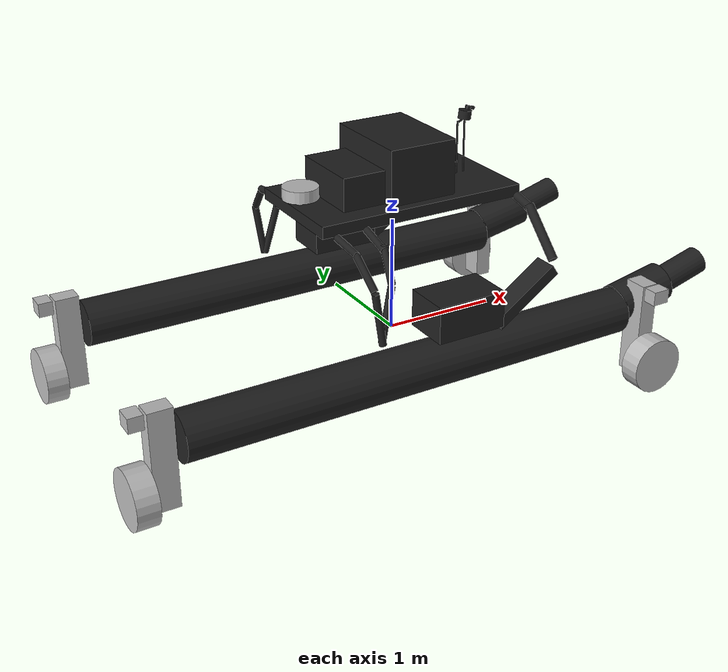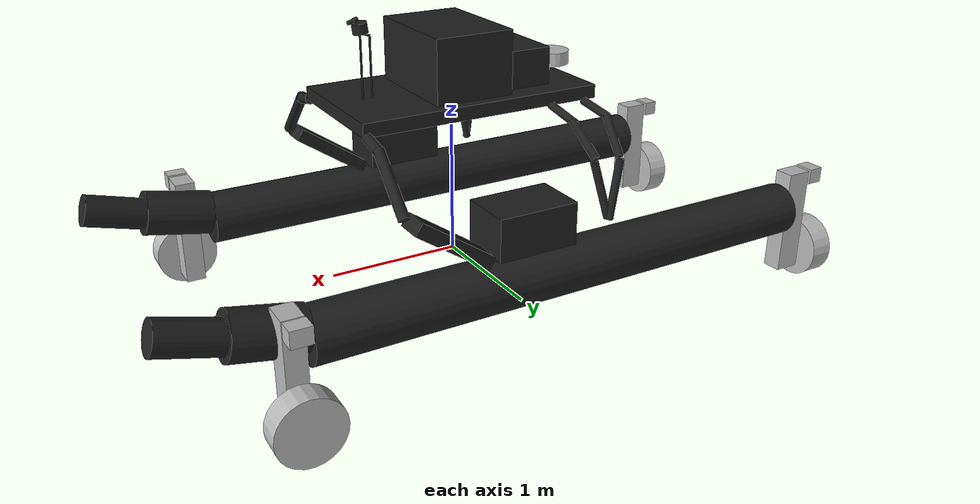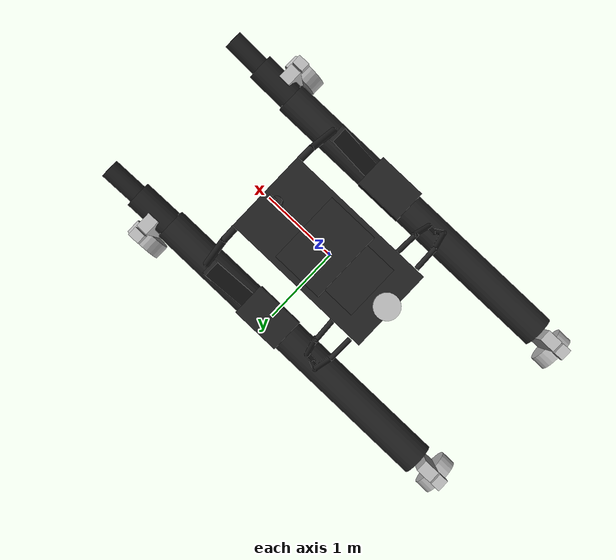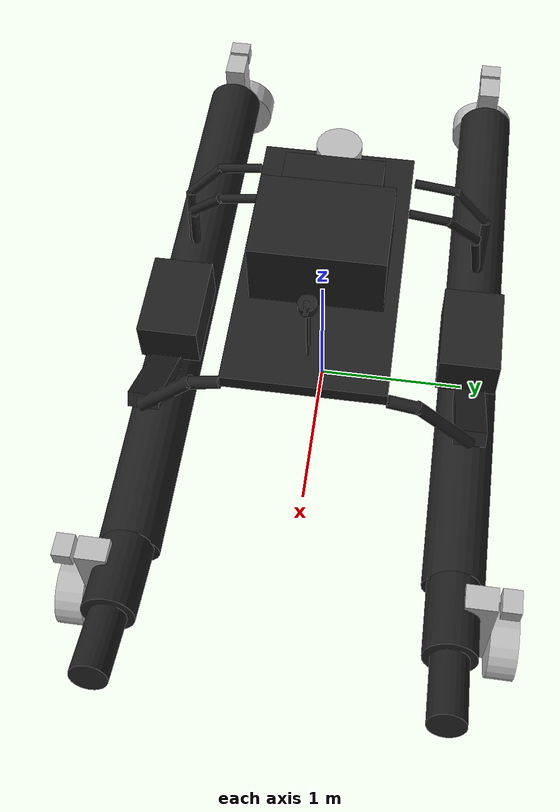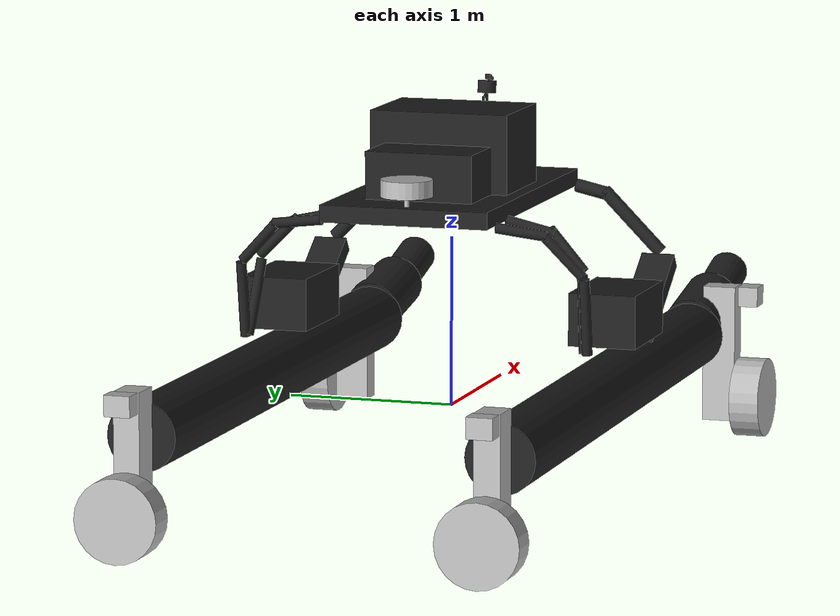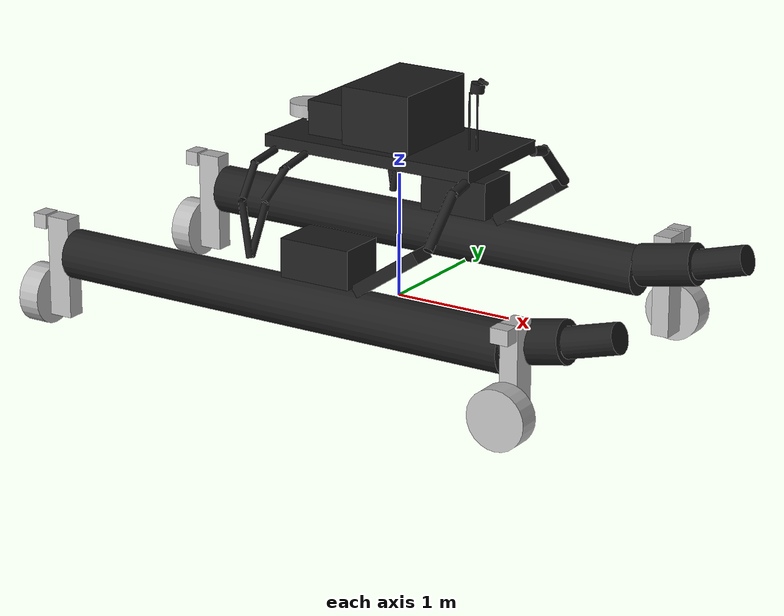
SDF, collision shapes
<sdf version='1.7'>
  <model name='WAM-V'>
    <link name='wamv/base_link'>
      <inertial>
        <pose>-0.005402 -0 0.252116 0 -0 0</pose>
        <mass>249.382</mass>
        <inertia>
          <ixx>224.43</ixx>
          <ixy>1.91919e-17</ixy>
          <ixz>1.41652</ixz>
          <iyy>453.226</iyy>
          <iyz>-8.95695e-16</iyz>
          <izz>499.347</izz>
        </inertia>
      </inertial>
      <collision name='wamv/base_link_fixed_joint_lump__front_camera_post_collision_collision'>
        <pose>0.7 0 1.55975 0 -0 0</pose>
        <geometry>
          <cylinder>
            <length>0.5265</length>
            <radius>0.0076</radius>
          </cylinder>
        </geometry>
      </collision>
      <collision name='wamv/base_link_fixed_joint_lump__front_camera_post_arm_collision_collision_1'>
        <pose>0.73 0 1.823 -1.20428 0 -1.5708</pose>
        <geometry>
          <cylinder>
            <length>0.065</length>
            <radius>0.008</radius>
          </cylinder>
        </geometry>
      </collision>
      <collision name='wamv/base_link_fixed_joint_lump__front_camera_lens_collision_collision_2'>
        <pose>0.767387 0 1.84534 3.14159 1.309 3.14159</pose>
        <geometry>
          <cylinder>
            <length>0.042</length>
            <radius>0.015</radius>
          </cylinder>
        </geometry>
      </collision>
      <collision name='wamv/base_link_fixed_joint_lump__front_camera_box_collision_collision_3'>
        <pose>0.730199 0 1.85531 0 0.261799 0</pose>
        <geometry>
          <box>
            <size>0.036 0.03 0.03</size>
          </box>
        </geometry>
      </collision>
      <collision name='wamv/base_link_fixed_joint_lump__lidar_wamv_post_collision_collision_4'>
        <pose>0.63 0 1.52325 0 -0 0</pose>
        <geometry>
          <cylinder>
            <length>0.4535</length>
            <radius>0.0076</radius>
          </cylinder>
        </geometry>
      </collision>
      <collision name='wamv/base_link_fixed_joint_lump__lidar_wamv_post_arm_collision_collision_5'>
        <pose>0.66 0 1.75 -1.20428 0 -1.5708</pose>
        <geometry>
          <cylinder>
            <length>0.065</length>
            <radius>0.008</radius>
          </cylinder>
        </geometry>
      </collision>
      <collision name='wamv/base_link_fixed_joint_lump__lidar_wamv_collision_collision_6'>
        <pose>0.7 0 1.8 0 0.139626 0</pose>
        <geometry>
          <cylinder>
            <length>0.075</length>
            <radius>0.055</radius>
          </cylinder>
        </geometry>
      </collision>
      <collision name='wamv/base_link_fixed_joint_lump__cpu_case_1_collision_collision_7'>
        <pose>0.035 0 1.53 0 -0 0</pose>
        <geometry>
          <box>
            <size>0.595 0.83 0.47</size>
          </box>
        </geometry>
      </collision>
      <collision name='wamv/base_link_fixed_joint_lump__cpu_case_2_collision_collision_8'>
        <pose>-0.45 0 1.438 0 -0 0</pose>
        <geometry>
          <box>
            <size>0.375 0.64 0.28</size>
          </box>
        </geometry>
      </collision>
      <collision name='wamv/base_link_fixed_joint_lump__left_float_collision_9'>
        <pose>-0.4 1.03 0.2 0 1.5708 0</pose>
        <geometry>
          <cylinder>
            <length>4</length>
            <radius>0.2</radius>
          </cylinder>
        </geometry>
      </collision>
      <collision name='wamv/base_link_fixed_joint_lump__left_mid_float_collision_10'>
        <pose>1.85 1.03 0.3 0 1.38 0</pose>
        <geometry>
          <cylinder>
            <length>0.5</length>
            <radius>0.17</radius>
          </cylinder>
        </geometry>
      </collision>
      <collision name='wamv/base_link_fixed_joint_lump__left_front_float_collision_11'>
        <pose>2.3 1.03 0.4 0 1.3 0</pose>
        <geometry>
          <cylinder>
            <length>0.45</length>
            <radius>0.12</radius>
          </cylinder>
        </geometry>
      </collision>
      <collision name='wamv/base_link_fixed_joint_lump__front_left_beam_lower_collision_12'>
        <pose>0.9 0.85 1 0.78 -0 0</pose>
        <geometry>
          <cylinder>
            <length>0.5</length>
            <radius>0.04</radius>
          </cylinder>
        </geometry>
      </collision>
      <collision name='wamv/base_link_fixed_joint_lump__front_left_beam_upper_collision_13'>
        <pose>0.9 0.6 1.18 1.35 -0 0</pose>
        <geometry>
          <cylinder>
            <length>0.2</length>
            <radius>0.04</radius>
          </cylinder>
        </geometry>
      </collision>
      <collision name='wamv/base_link_fixed_joint_lump__mid_left_beam_lower_collision_14'>
        <pose>-0.65 0.99 0.7 0.1 0.25 0</pose>
        <geometry>
          <cylinder>
            <length>0.45</length>
            <radius>0.03</radius>
          </cylinder>
        </geometry>
      </collision>
      <collision name='wamv/base_link_fixed_joint_lump__mid_left_beam_medium_collision_15'>
        <pose>-0.57 0.87 1.05 0.75 0.25 0</pose>
        <geometry>
          <cylinder>
            <length>0.32</length>
            <radius>0.03</radius>
          </cylinder>
        </geometry>
      </collision>
      <collision name='wamv/base_link_fixed_joint_lump__mid_left_beam_upper_collision_16'>
        <pose>-0.55 0.65 1.17 1.35 0.25 0</pose>
        <geometry>
          <cylinder>
            <length>0.3</length>
            <radius>0.03</radius>
          </cylinder>
        </geometry>
      </collision>
      <collision name='wamv/base_link_fixed_joint_lump__rear_left_beam_lower_collision_17'>
        <pose>-0.74 1.03 0.7 0 -0.15 0</pose>
        <geometry>
          <cylinder>
            <length>0.45</length>
            <radius>0.03</radius>
          </cylinder>
        </geometry>
      </collision>
      <collision name='wamv/base_link_fixed_joint_lump__rear_left_beam_medium_collision_18'>
        <pose>-0.79 0.91 1.05 0.75 -0.15 -0</pose>
        <geometry>
          <cylinder>
            <length>0.32</length>
            <radius>0.03</radius>
          </cylinder>
        </geometry>
      </collision>
      <collision name='wamv/base_link_fixed_joint_lump__rear_left_beam_upper_collision_19'>
        <pose>-0.81 0.67 1.18 1.45 -0.15 0</pose>
        <geometry>
          <cylinder>
            <length>0.3</length>
            <radius>0.03</radius>
          </cylinder>
        </geometry>
      </collision>
      <collision name='wamv/base_link_fixed_joint_lump__left_joint_collision_20'>
        <pose>0.58 1.03 0.6 0 -0.6 0</pose>
        <geometry>
          <box>
            <size>0.65 0.2 0.1</size>
          </box>
        </geometry>
      </collision>
      <collision name='wamv/base_link_fixed_joint_lump__right_float_collision_21'>
        <pose>-0.4 -1.03 0.2 0 1.5708 0</pose>
        <geometry>
          <cylinder>
            <length>4</length>
            <radius>0.2</radius>
          </cylinder>
        </geometry>
      </collision>
      <collision name='wamv/base_link_fixed_joint_lump__right_mid_float_collision_22'>
        <pose>1.85 -1.03 0.3 0 1.38 0</pose>
        <geometry>
          <cylinder>
            <length>0.5</length>
            <radius>0.17</radius>
          </cylinder>
        </geometry>
      </collision>
      <collision name='wamv/base_link_fixed_joint_lump__right_front_float_collision_23'>
        <pose>2.3 -1.03 0.4 0 1.3 0</pose>
        <geometry>
          <cylinder>
            <length>0.45</length>
            <radius>0.12</radius>
          </cylinder>
        </geometry>
      </collision>
      <collision name='wamv/base_link_fixed_joint_lump__front_right_beam_lower_collision_24'>
        <pose>0.9 -0.85 1 -0.78 0 0</pose>
        <geometry>
          <cylinder>
            <length>0.5</length>
            <radius>0.04</radius>
          </cylinder>
        </geometry>
      </collision>
      <collision name='wamv/base_link_fixed_joint_lump__front_right_beam_upper_collision_25'>
        <pose>0.9 -0.6 1.18 -1.35 0 0</pose>
        <geometry>
          <cylinder>
            <length>0.2</length>
            <radius>0.04</radius>
          </cylinder>
        </geometry>
      </collision>
      <collision name='wamv/base_link_fixed_joint_lump__mid_right_beam_lower_collision_26'>
        <pose>-0.65 -0.99 0.7 -0.1 0.25 0</pose>
        <geometry>
          <cylinder>
            <length>0.45</length>
            <radius>0.03</radius>
          </cylinder>
        </geometry>
      </collision>
      <collision name='wamv/base_link_fixed_joint_lump__mid_right_beam_medium_collision_27'>
        <pose>-0.57 -0.87 1.05 -0.75 0.25 0</pose>
        <geometry>
          <cylinder>
            <length>0.32</length>
            <radius>0.03</radius>
          </cylinder>
        </geometry>
      </collision>
      <collision name='wamv/base_link_fixed_joint_lump__mid_right_beam_upper_collision_28'>
        <pose>-0.55 -0.65 1.17 -1.35 0.25 0</pose>
        <geometry>
          <cylinder>
            <length>0.3</length>
            <radius>0.03</radius>
          </cylinder>
        </geometry>
      </collision>
      <collision name='wamv/base_link_fixed_joint_lump__rear_right_beam_lower_collision_29'>
        <pose>-0.74 -1.03 0.7 0 -0.15 0</pose>
        <geometry>
          <cylinder>
            <length>0.45</length>
            <radius>0.03</radius>
          </cylinder>
        </geometry>
      </collision>
      <collision name='wamv/base_link_fixed_joint_lump__rear_right_beam_medium_collision_30'>
        <pose>-0.79 -0.91 1.05 -0.75 -0.15 0</pose>
        <geometry>
          <cylinder>
            <length>0.32</length>
            <radius>0.03</radius>
          </cylinder>
        </geometry>
      </collision>
      <collision name='wamv/base_link_fixed_joint_lump__rear_right_beam_upper_collision_31'>
        <pose>-0.81 -0.67 1.18 -1.45 -0.15 0</pose>
        <geometry>
          <cylinder>
            <length>0.3</length>
            <radius>0.03</radius>
          </cylinder>
        </geometry>
      </collision>
      <collision name='wamv/base_link_fixed_joint_lump__right_joint_collision_32'>
        <pose>0.58 -1.03 0.6 0 -0.6 0</pose>
        <geometry>
          <box>
            <size>0.65 0.2 0.1</size>
          </box>
        </geometry>
      </collision>
      <collision name='wamv/base_link_fixed_joint_lump__top_base_collision_33'>
        <pose>0 0 1.25 0 -0 0</pose>
        <geometry>
          <box>
            <size>1.85 1 0.1</size>
          </box>
        </geometry>
      </collision>
      <collision name='wamv/base_link_fixed_joint_lump__left_battery_collision_collision_34'>
        <pose>0 1 0.6 0 -0 0</pose>
        <geometry>
          <box>
            <size>0.6 0.4 0.31</size>
          </box>
        </geometry>
      </collision>
      <collision name='wamv/base_link_fixed_joint_lump__right_battery_collision_collision_35'>
        <pose>0 -1 0.6 0 -0 0</pose>
        <geometry>
          <box>
            <size>0.6 0.4 0.31</size>
          </box>
        </geometry>
      </collision>
      <visual name='wamv/base_link_fixed_joint_lump__wamv/front_camera_post_link_visual'>
        <pose>0.7 0 1.55975 0 -0 0</pose>
        <geometry>
          <cylinder>
            <length>0.5265</length>
            <radius>0.0076</radius>
          </cylinder>
        </geometry>
        <material>
          <script>
            <name>Gazebo/Black</name>
            <uri>file://media/materials/scripts/gazebo.material</uri>
          </script>
        </material>
      </visual>
      <visual name='wamv/base_link_fixed_joint_lump__front_camera_post_arm_visual_visual_1'>
        <pose>0.692 0 1.82 -1.0472 0 -1.5708</pose>
        <geometry>
          <mesh>
            <scale>1 1 1</scale>
            <uri>model://vrx_gazebo/models/sensor_post/mesh/sensor_post_arm.dae</uri>
          </mesh>
        </geometry>
      </visual>
      <visual name='wamv/base_link_fixed_joint_lump__front_camera_visual_visual_2'>
        <pose>0.718124 0 1.85854 0.261799 0 1.5708</pose>
        <geometry>
          <mesh>
            <scale>1 1 1</scale>
            <uri>model://vrx_gazebo/models/mono_camera/mesh/mono_camera.dae</uri>
          </mesh>
        </geometry>
      </visual>
      <visual name='wamv/base_link_fixed_joint_lump__wamv/lidar_wamv_post_link_visual_3'>
        <pose>0.63 0 1.52325 0 -0 0</pose>
        <geometry>
          <cylinder>
            <length>0.4535</length>
            <radius>0.0076</radius>
          </cylinder>
        </geometry>
        <material>
          <script>
            <name>Gazebo/Black</name>
            <uri>file://media/materials/scripts/gazebo.material</uri>
          </script>
        </material>
      </visual>
      <visual name='wamv/base_link_fixed_joint_lump__lidar_wamv_post_arm_visual_visual_4'>
        <pose>0.622 0 1.747 -1.0472 0 -1.5708</pose>
        <geometry>
          <mesh>
            <scale>1 1 1</scale>
            <uri>model://vrx_gazebo/models/sensor_post/mesh/sensor_post_arm.dae</uri>
          </mesh>
        </geometry>
      </visual>
      <visual name='wamv/base_link_fixed_joint_lump__lidar_wamv_visual_visual_5'>
        <pose>0.695129 0 1.76534 0 0.139626 0</pose>
        <geometry>
          <mesh>
            <scale>1 1 1</scale>
            <uri>model://vrx_gazebo/models/3d_lidar/mesh/3d_lidar.dae</uri>
          </mesh>
        </geometry>
      </visual>
      <visual name='wamv/base_link_fixed_joint_lump__cpu_cases_visual_visual_6'>
        <pose>-0.077 0 0 0 -0 0</pose>
        <geometry>
          <mesh>
            <scale>1 1 1</scale>
            <uri>model://vrx_gazebo/models/cpu_cases/mesh/cpu_cases.dae</uri>
          </mesh>
        </geometry>
      </visual>
      <visual name='wamv/base_link_fixed_joint_lump__wamv/dummy_link_visual_7'>
        <pose>0 0 0 0 -0 0</pose>
        <geometry>
          <mesh>
            <scale>1 1 1</scale>
            <uri>model://wamv_description/models/WAM-V-Base/mesh/WAM-V-Base.dae</uri>
          </mesh>
        </geometry>
      </visual>
      <visual name='wamv/base_link_fixed_joint_lump__left_battery_visual_visual_8'>
        <pose>0 -0.03 0 0 -0 0</pose>
        <geometry>
          <mesh>
            <scale>1 1 1</scale>
            <uri>model://vrx_gazebo/models/battery/mesh/battery.dae</uri>
          </mesh>
        </geometry>
      </visual>
      <visual name='wamv/base_link_fixed_joint_lump__right_battery_visual_visual_9'>
        <pose>0 -2.03 0 0 -0 0</pose>
        <geometry>
          <mesh>
            <scale>1 1 1</scale>
            <uri>model://vrx_gazebo/models/battery/mesh/battery.dae</uri>
          </mesh>
        </geometry>
      </visual>
      <sensor name='front_camera_sensor' type='camera'>
        <update_rate>30</update_rate>
        <camera name='front_camera_camera'>
          <horizontal_fov>1.39626</horizontal_fov>
          <image>
            <width>1280</width>
            <height>720</height>
            <format>R8G8B8</format>
          </image>
          <clip>
            <near>0.05</near>
            <far>300</far>
          </clip>
          <noise>
            <type>gaussian</type>
            <mean>0</mean>
            <stddev>0.007</stddev>
          </noise>
        </camera>
        <plugin name='camera_plugin_front_camera' filename='libgazebo_ros_camera.so'>
          <alwaysOn>1</alwaysOn>
          <updateRate>0.0</updateRate>
          <cameraName>wamv/sensors/cameras/front_camera</cameraName>
          <imageTopicName>image_raw</imageTopicName>
          <cameraInfoTopicName>camera_info</cameraInfoTopicName>
          <frameName>wamv/front_camera_link_optical</frameName>
          <hackBaseline>0.07</hackBaseline>
          <distortionK1>0.0</distortionK1>
          <distortionK2>0.0</distortionK2>
          <distortionK3>0.0</distortionK3>
          <distortionT1>0.0</distortionT1>
          <distortionT2>0.0</distortionT2>
        </plugin>
        <pose>0.75 0 1.85 0 0.261799 0</pose>
      </sensor>
      <sensor name='lidar_wamv_sensor' type='gpu_ray'>
        <update_rate>10</update_rate>
        <ray>
          <scan>
            <horizontal>
              <samples>18750</samples>
              <resolution>0.1</resolution>
              <min_angle>-3.14159</min_angle>
              <max_angle>3.14159</max_angle>
            </horizontal>
            <vertical>
              <samples>16</samples>
              <resolution>1</resolution>
              <min_angle>-0.261799</min_angle>
              <max_angle>0.261799</max_angle>
            </vertical>
          </scan>
          <range>
            <min>0.1</min>
            <max>130</max>
          </range>
          <noise>
            <type>gaussian</type>
            <mean>0</mean>
            <stddev>0.01</stddev>
          </noise>
        </ray>
        <plugin name='lidar_wamv_plugin' filename='libgazebo_ros_velodyne_gpu_laser.so'>
          <topicName>wamv/sensors/lidars/lidar_wamv/points</topicName>
          <frameName>wamv/lidar_wamv_link</frameName>
          <min_intensity>0</min_intensity>
        </plugin>
        <pose>0.7 0 1.8 0 0.139626 0</pose>
      </sensor>
    </link>
    <joint name='wamv/front_left_chasis_engine_joint' type='revolute'>
      <pose relative_to='wamv/base_link'>1.75 1.02713 0.318237 0 0 -1.5708</pose>
      <parent>wamv/base_link</parent>
      <child>wamv/front_left_engine_link</child>
      <axis>
        <xyz>0 0 1</xyz>
        <limit>
          <lower>-3.14159</lower>
          <upper>3.14159</upper>
          <effort>10</effort>
          <velocity>10</velocity>
        </limit>
        <dynamics>
          <spring_reference>0</spring_reference>
          <spring_stiffness>0</spring_stiffness>
        </dynamics>
      </axis>
    </joint>
    <link name='wamv/front_left_engine_link'>
      <pose relative_to='wamv/front_left_chasis_engine_joint'>0 0 0 0 -0 0</pose>
      <inertial>
        <pose>0 0 0 0 -0 0</pose>
        <mass>15</mass>
        <inertia>
          <ixx>0.889245</ixx>
          <ixy>0</ixy>
          <ixz>0</ixz>
          <iyy>0.911125</iyy>
          <iyz>0</iyz>
          <izz>0.078125</izz>
        </inertia>
      </inertial>
      <collision name='wamv/front_left_engine_link_fixed_joint_lump__front_left_engine_vertical_axis_collision_collision'>
        <pose>-0.16 0 -0.24 0 -0 0</pose>
        <geometry>
          <box>
            <size>0.2 0.15 0.83</size>
          </box>
        </geometry>
      </collision>
      <collision name='wamv/front_left_engine_link_fixed_joint_lump__front_left_engine_rear_end_collision_collision_1'>
        <pose>-0.34 0 0.12 0 -0 0</pose>
        <geometry>
          <box>
            <size>0.12 0.15 0.12</size>
          </box>
        </geometry>
      </collision>
      <visual name='wamv/front_left_engine_link_visual'>
        <pose>0 0 0 0 -0 0</pose>
        <geometry>
          <mesh>
            <scale>1 1 1</scale>
            <uri>model://wamv_description/models/engine/mesh/engine.dae</uri>
          </mesh>
        </geometry>
      </visual>
    </link>
    <joint name='wamv/front_left_engine_propeller_joint' type='revolute'>
      <pose relative_to='wamv/front_left_engine_link'>-0.278156 0 -0.509371 0 -0 0</pose>
      <parent>wamv/front_left_engine_link</parent>
      <child>wamv/front_left_propeller_link</child>
      <axis>
        <xyz>1 0 0</xyz>
        <limit>
          <effort>100</effort>
          <velocity>100</velocity>
          <lower>-1e+16</lower>
          <upper>1e+16</upper>
        </limit>
        <dynamics>
          <damping>0.05</damping>
          <friction>0.05</friction>
          <spring_reference>0</spring_reference>
          <spring_stiffness>0</spring_stiffness>
        </dynamics>
      </axis>
    </joint>
    <link name='wamv/front_left_propeller_link'>
      <pose relative_to='wamv/front_left_engine_propeller_joint'>0 0 0 0 -0 0</pose>
      <inertial>
        <pose>0 0 0 0 -0 0</pose>
        <mass>0.5</mass>
        <inertia>
          <ixx>0.008545</ixx>
          <ixy>0</ixy>
          <ixz>0</ixz>
          <iyy>0.008545</iyy>
          <iyz>0</iyz>
          <izz>0.0144</izz>
        </inertia>
      </inertial>
      <collision name='wamv/front_left_propeller_link_fixed_joint_lump__front_left_propeller_collision_collision'>
        <pose>-0.08 0 0 0 1.5708 0</pose>
        <geometry>
          <cylinder>
            <length>0.18</length>
            <radius>0.24</radius>
          </cylinder>
        </geometry>
      </collision>
      <visual name='wamv/front_left_propeller_link_visual'>
        <pose>0 0 0 0 -0 0</pose>
        <geometry>
          <mesh>
            <scale>1 1 1</scale>
            <uri>model://wamv_description/models/propeller/mesh/propeller.dae</uri>
          </mesh>
        </geometry>
      </visual>
    </link>
    <joint name='wamv/front_right_chasis_engine_joint' type='revolute'>
      <pose relative_to='wamv/base_link'>1.75 -1.02713 0.318237 0 -0 1.5708</pose>
      <parent>wamv/base_link</parent>
      <child>wamv/front_right_engine_link</child>
      <axis>
        <xyz>0 0 1</xyz>
        <limit>
          <lower>-3.14159</lower>
          <upper>3.14159</upper>
          <effort>10</effort>
          <velocity>10</velocity>
        </limit>
        <dynamics>
          <spring_reference>0</spring_reference>
          <spring_stiffness>0</spring_stiffness>
        </dynamics>
      </axis>
    </joint>
    <link name='wamv/front_right_engine_link'>
      <pose relative_to='wamv/front_right_chasis_engine_joint'>0 0 0 0 -0 0</pose>
      <inertial>
        <pose>0 0 0 0 -0 0</pose>
        <mass>15</mass>
        <inertia>
          <ixx>0.889245</ixx>
          <ixy>0</ixy>
          <ixz>0</ixz>
          <iyy>0.911125</iyy>
          <iyz>0</iyz>
          <izz>0.078125</izz>
        </inertia>
      </inertial>
      <collision name='wamv/front_right_engine_link_fixed_joint_lump__front_right_engine_vertical_axis_collision_collision'>
        <pose>-0.16 0 -0.24 0 -0 0</pose>
        <geometry>
          <box>
            <size>0.2 0.15 0.83</size>
          </box>
        </geometry>
      </collision>
      <collision name='wamv/front_right_engine_link_fixed_joint_lump__front_right_engine_rear_end_collision_collision_1'>
        <pose>-0.34 0 0.12 0 -0 0</pose>
        <geometry>
          <box>
            <size>0.12 0.15 0.12</size>
          </box>
        </geometry>
      </collision>
      <visual name='wamv/front_right_engine_link_visual'>
        <pose>0 0 0 0 -0 0</pose>
        <geometry>
          <mesh>
            <scale>1 1 1</scale>
            <uri>model://wamv_description/models/engine/mesh/engine.dae</uri>
          </mesh>
        </geometry>
      </visual>
    </link>
    <joint name='wamv/front_right_engine_propeller_joint' type='revolute'>
      <pose relative_to='wamv/front_right_engine_link'>-0.278156 0 -0.509371 0 -0 0</pose>
      <parent>wamv/front_right_engine_link</parent>
      <child>wamv/front_right_propeller_link</child>
      <axis>
        <xyz>1 0 0</xyz>
        <limit>
          <effort>100</effort>
          <velocity>100</velocity>
          <lower>-1e+16</lower>
          <upper>1e+16</upper>
        </limit>
        <dynamics>
          <damping>0.05</damping>
          <friction>0.05</friction>
          <spring_reference>0</spring_reference>
          <spring_stiffness>0</spring_stiffness>
        </dynamics>
      </axis>
    </joint>
    <link name='wamv/front_right_propeller_link'>
      <pose relative_to='wamv/front_right_engine_propeller_joint'>0 0 0 0 -0 0</pose>
      <inertial>
        <pose>0 0 0 0 -0 0</pose>
        <mass>0.5</mass>
        <inertia>
          <ixx>0.008545</ixx>
          <ixy>0</ixy>
          <ixz>0</ixz>
          <iyy>0.008545</iyy>
          <iyz>0</iyz>
          <izz>0.0144</izz>
        </inertia>
      </inertial>
      <collision name='wamv/front_right_propeller_link_fixed_joint_lump__front_right_propeller_collision_collision'>
        <pose>-0.08 0 0 0 1.5708 0</pose>
        <geometry>
          <cylinder>
            <length>0.18</length>
            <radius>0.24</radius>
          </cylinder>
        </geometry>
      </collision>
      <visual name='wamv/front_right_propeller_link_visual'>
        <pose>0 0 0 0 -0 0</pose>
        <geometry>
          <mesh>
            <scale>1 1 1</scale>
            <uri>model://wamv_description/models/propeller/mesh/propeller.dae</uri>
          </mesh>
        </geometry>
      </visual>
    </link>
    <joint name='wamv/gps_wamv_joint' type='revolute'>
      <pose relative_to='wamv/base_link'>-0.85 0 1.3 0 -0 0</pose>
      <parent>wamv/base_link</parent>
      <child>wamv/gps_wamv_link</child>
      <axis>
        <xyz>0 0 1</xyz>
        <limit>
          <lower>0</lower>
          <upper>0</upper>
          <effort>1000</effort>
          <velocity>0</velocity>
        </limit>
        <dynamics>
          <spring_reference>0</spring_reference>
          <spring_stiffness>0</spring_stiffness>
        </dynamics>
      </axis>
    </joint>
    <link name='wamv/gps_wamv_link'>
      <pose relative_to='wamv/gps_wamv_joint'>0 0 0 0 -0 0</pose>
      <inertial>
        <pose>0 0 0 0 -0 0</pose>
        <mass>1</mass>
        <inertia>
          <ixx>0.006458</ixx>
          <ixy>0</ixy>
          <ixz>0</ixz>
          <iyy>0.006458</iyy>
          <iyz>0</iyz>
          <izz>0.01125</izz>
        </inertia>
      </inertial>
      <collision name='wamv/gps_wamv_link_fixed_joint_lump__gps_wamv_collision_base_collision'>
        <pose>0 0 0.025 0 -0 0</pose>
        <geometry>
          <cylinder>
            <length>0.05</length>
            <radius>0.015</radius>
          </cylinder>
        </geometry>
      </collision>
      <collision name='wamv/gps_wamv_link_fixed_joint_lump__gps_wamv_collision_antenna_collision_1'>
        <pose>0 0 0.11 0 -0 0</pose>
        <geometry>
          <cylinder>
            <length>0.1</length>
            <radius>0.15</radius>
          </cylinder>
        </geometry>
      </collision>
      <visual name='wamv/gps_wamv_link_fixed_joint_lump__gps_wamv_visual_visual'>
        <pose>0 0 0 0 -0 0</pose>
        <geometry>
          <mesh>
            <scale>1 1 1</scale>
            <uri>model://wamv_gazebo/models/gps/mesh/gps.dae</uri>
          </mesh>
        </geometry>
      </visual>
    </link>
    <joint name='wamv/imu_wamv_joint' type='revolute'>
      <pose relative_to='wamv/base_link'>0.3 -0.2 1.3 0 -0 0</pose>
      <parent>wamv/base_link</parent>
      <child>wamv/imu_wamv_link</child>
      <axis>
        <xyz>0 0 1</xyz>
        <limit>
          <lower>0</lower>
          <upper>0</upper>
          <effort>1000</effort>
          <velocity>0</velocity>
        </limit>
        <dynamics>
          <spring_reference>0</spring_reference>
          <spring_stiffness>0</spring_stiffness>
        </dynamics>
      </axis>
    </joint>
    <link name='wamv/imu_wamv_link'>
      <pose relative_to='wamv/imu_wamv_joint'>0 0 0 0 -0 0</pose>
      <inertial>
        <pose>0 0 0 0 -0 0</pose>
        <mass>0.1</mass>
        <inertia>
          <ixx>8.3e-05</ixx>
          <ixy>0</ixy>
          <ixz>0</ixz>
          <iyy>8.3e-05</iyy>
          <iyz>0</iyz>
          <izz>0.0125</izz>
        </inertia>
      </inertial>
      <visual name='wamv/imu_wamv_link_fixed_joint_lump__imu_wamv_visual_visual'>
        <pose>0 0 0 0 -0 0</pose>
        <geometry>
          <box>
            <size>0.05 0.025 0.005</size>
          </box>
        </geometry>
      </visual>
    </link>
    <joint name='wamv/rear_left_chasis_engine_joint' type='revolute'>
      <pose relative_to='wamv/base_link'>-2.37378 1.02713 0.318237 0 -0 0</pose>
      <parent>wamv/base_link</parent>
      <child>wamv/rear_left_engine_link</child>
      <axis>
        <xyz>0 0 1</xyz>
        <limit>
          <lower>-3.14159</lower>
          <upper>3.14159</upper>
          <effort>10</effort>
          <velocity>10</velocity>
        </limit>
        <dynamics>
          <spring_reference>0</spring_reference>
          <spring_stiffness>0</spring_stiffness>
        </dynamics>
      </axis>
    </joint>
    <link name='wamv/rear_left_engine_link'>
      <pose relative_to='wamv/rear_left_chasis_engine_joint'>0 0 0 0 -0 0</pose>
      <inertial>
        <pose>0 0 0 0 -0 0</pose>
        <mass>15</mass>
        <inertia>
          <ixx>0.889245</ixx>
          <ixy>0</ixy>
          <ixz>0</ixz>
          <iyy>0.911125</iyy>
          <iyz>0</iyz>
          <izz>0.078125</izz>
        </inertia>
      </inertial>
      <collision name='wamv/rear_left_engine_link_fixed_joint_lump__rear_left_engine_vertical_axis_collision_collision'>
        <pose>-0.16 0 -0.24 0 -0 0</pose>
        <geometry>
          <box>
            <size>0.2 0.15 0.83</size>
          </box>
        </geometry>
      </collision>
      <collision name='wamv/rear_left_engine_link_fixed_joint_lump__rear_left_engine_rear_end_collision_collision_1'>
        <pose>-0.34 0 0.12 0 -0 0</pose>
        <geometry>
          <box>
            <size>0.12 0.15 0.12</size>
          </box>
        </geometry>
      </collision>
      <visual name='wamv/rear_left_engine_link_visual'>
        <pose>0 0 0 0 -0 0</pose>
        <geometry>
          <mesh>
            <scale>1 1 1</scale>
            <uri>model://wamv_description/models/engine/mesh/engine.dae</uri>
          </mesh>
        </geometry>
      </visual>
    </link>
    <joint name='wamv/rear_left_engine_propeller_joint' type='revolute'>
      <pose relative_to='wamv/rear_left_engine_link'>-0.278156 0 -0.509371 0 -0 0</pose>
      <parent>wamv/rear_left_engine_link</parent>
      <child>wamv/rear_left_propeller_link</child>
      <axis>
        <xyz>1 0 0</xyz>
        <limit>
          <effort>100</effort>
          <velocity>100</velocity>
          <lower>-1e+16</lower>
          <upper>1e+16</upper>
        </limit>
        <dynamics>
          <damping>0.05</damping>
          <friction>0.05</friction>
          <spring_reference>0</spring_reference>
          <spring_stiffness>0</spring_stiffness>
        </dynamics>
      </axis>
    </joint>
    <link name='wamv/rear_left_propeller_link'>
      <pose relative_to='wamv/rear_left_engine_propeller_joint'>0 0 0 0 -0 0</pose>
      <inertial>
        <pose>0 0 0 0 -0 0</pose>
        <mass>0.5</mass>
        <inertia>
          <ixx>0.008545</ixx>
          <ixy>0</ixy>
          <ixz>0</ixz>
          <iyy>0.008545</iyy>
          <iyz>0</iyz>
          <izz>0.0144</izz>
        </inertia>
      </inertial>
      <collision name='wamv/rear_left_propeller_link_fixed_joint_lump__rear_left_propeller_collision_collision'>
        <pose>-0.08 0 0 0 1.5708 0</pose>
        <geometry>
          <cylinder>
            <length>0.18</length>
            <radius>0.24</radius>
          </cylinder>
        </geometry>
      </collision>
      <visual name='wamv/rear_left_propeller_link_visual'>
        <pose>0 0 0 0 -0 0</pose>
        <geometry>
          <mesh>
            <scale>1 1 1</scale>
            <uri>model://wamv_description/models/propeller/mesh/propeller.dae</uri>
          </mesh>
        </geometry>
      </visual>
    </link>
    <joint name='wamv/rear_right_chasis_engine_joint' type='revolute'>
      <pose relative_to='wamv/base_link'>-2.37378 -1.02713 0.318237 0 -0 0</pose>
      <parent>wamv/base_link</parent>
      <child>wamv/rear_right_engine_link</child>
      <axis>
        <xyz>0 0 1</xyz>
        <limit>
          <lower>-3.14159</lower>
          <upper>3.14159</upper>
          <effort>10</effort>
          <velocity>10</velocity>
        </limit>
        <dynamics>
          <spring_reference>0</spring_reference>
          <spring_stiffness>0</spring_stiffness>
        </dynamics>
      </axis>
    </joint>
    <link name='wamv/rear_right_engine_link'>
      <pose relative_to='wamv/rear_right_chasis_engine_joint'>0 0 0 0 -0 0</pose>
      <inertial>
        <pose>0 0 0 0 -0 0</pose>
        <mass>15</mass>
        <inertia>
          <ixx>0.889245</ixx>
          <ixy>0</ixy>
          <ixz>0</ixz>
          <iyy>0.911125</iyy>
          <iyz>0</iyz>
          <izz>0.078125</izz>
        </inertia>
      </inertial>
      <collision name='wamv/rear_right_engine_link_fixed_joint_lump__rear_right_engine_vertical_axis_collision_collision'>
        <pose>-0.16 0 -0.24 0 -0 0</pose>
        <geometry>
          <box>
            <size>0.2 0.15 0.83</size>
          </box>
        </geometry>
      </collision>
      <collision name='wamv/rear_right_engine_link_fixed_joint_lump__rear_right_engine_rear_end_collision_collision_1'>
        <pose>-0.34 0 0.12 0 -0 0</pose>
        <geometry>
          <box>
            <size>0.12 0.15 0.12</size>
          </box>
        </geometry>
      </collision>
      <visual name='wamv/rear_right_engine_link_visual'>
        <pose>0 0 0 0 -0 0</pose>
        <geometry>
          <mesh>
            <scale>1 1 1</scale>
            <uri>model://wamv_description/models/engine/mesh/engine.dae</uri>
          </mesh>
        </geometry>
      </visual>
    </link>
    <joint name='wamv/rear_right_engine_propeller_joint' type='revolute'>
      <pose relative_to='wamv/rear_right_engine_link'>-0.278156 0 -0.509371 0 -0 0</pose>
      <parent>wamv/rear_right_engine_link</parent>
      <child>wamv/rear_right_propeller_link</child>
      <axis>
        <xyz>1 0 0</xyz>
        <limit>
          <effort>100</effort>
          <velocity>100</velocity>
          <lower>-1e+16</lower>
          <upper>1e+16</upper>
        </limit>
        <dynamics>
          <damping>0.05</damping>
          <friction>0.05</friction>
          <spring_reference>0</spring_reference>
          <spring_stiffness>0</spring_stiffness>
        </dynamics>
      </axis>
    </joint>
    <link name='wamv/rear_right_propeller_link'>
      <pose relative_to='wamv/rear_right_engine_propeller_joint'>0 0 0 0 -0 0</pose>
      <inertial>
        <pose>0 0 0 0 -0 0</pose>
        <mass>0.5</mass>
        <inertia>
          <ixx>0.008545</ixx>
          <ixy>0</ixy>
          <ixz>0</ixz>
          <iyy>0.008545</iyy>
          <iyz>0</iyz>
          <izz>0.0144</izz>
        </inertia>
      </inertial>
      <collision name='wamv/rear_right_propeller_link_fixed_joint_lump__rear_right_propeller_collision_collision'>
        <pose>-0.08 0 0 0 1.5708 0</pose>
        <geometry>
          <cylinder>
            <length>0.18</length>
            <radius>0.24</radius>
          </cylinder>
        </geometry>
      </collision>
      <visual name='wamv/rear_right_propeller_link_visual'>
        <pose>0 0 0 0 -0 0</pose>
        <geometry>
          <mesh>
            <scale>1 1 1</scale>
            <uri>model://wamv_description/models/propeller/mesh/propeller.dae</uri>
          </mesh>
        </geometry>
      </visual>
    </link>
    <plugin name='wamv_gazebo_thrust' filename='libusv_gazebo_thrust_plugin.so'>
      <cmdTimeout>1.0</cmdTimeout>
      <robotNamespace>wamv</robotNamespace>
      <thruster>
        <linkName>wamv/rear_left_propeller_link</linkName>
        <propJointName>wamv/rear_left_engine_propeller_joint</propJointName>
        <engineJointName>wamv/rear_left_chasis_engine_joint</engineJointName>
        <cmdTopic>thrusters/rear_left_thrust_cmd</cmdTopic>
        <angleTopic>thrusters/rear_left_thrust_angle</angleTopic>
        <enableAngle>1</enableAngle>
        <mappingType>0</mappingType>
        <maxCmd>1.0</maxCmd>
        <maxForceFwd>200.0</maxForceFwd>
        <maxForceRev>-200.0</maxForceRev>
        <maxAngle>3.141592653589793</maxAngle>
      </thruster>
      <thruster>
        <linkName>wamv/rear_right_propeller_link</linkName>
        <propJointName>wamv/rear_right_engine_propeller_joint</propJointName>
        <engineJointName>wamv/rear_right_chasis_engine_joint</engineJointName>
        <cmdTopic>thrusters/rear_right_thrust_cmd</cmdTopic>
        <angleTopic>thrusters/rear_right_thrust_angle</angleTopic>
        <enableAngle>1</enableAngle>
        <mappingType>0</mappingType>
        <maxCmd>1.0</maxCmd>
        <maxForceFwd>200.0</maxForceFwd>
        <maxForceRev>-200.0</maxForceRev>
        <maxAngle>3.141592653589793</maxAngle>
      </thruster>
      <thruster>
        <linkName>wamv/front_left_propeller_link</linkName>
        <propJointName>wamv/front_left_engine_propeller_joint</propJointName>
        <engineJointName>wamv/front_left_chasis_engine_joint</engineJointName>
        <cmdTopic>thrusters/front_left_thrust_cmd</cmdTopic>
        <angleTopic>thrusters/front_left_thrust_angle</angleTopic>
        <enableAngle>1</enableAngle>
        <mappingType>0</mappingType>
        <maxCmd>1.0</maxCmd>
        <maxForceFwd>200.0</maxForceFwd>
        <maxForceRev>-200.0</maxForceRev>
        <maxAngle>3.141592653589793</maxAngle>
      </thruster>
      <thruster>
        <linkName>wamv/front_right_propeller_link</linkName>
        <propJointName>wamv/front_right_engine_propeller_joint</propJointName>
        <engineJointName>wamv/front_right_chasis_engine_joint</engineJointName>
        <cmdTopic>thrusters/front_right_thrust_cmd</cmdTopic>
        <angleTopic>thrusters/front_right_thrust_angle</angleTopic>
        <enableAngle>1</enableAngle>
        <mappingType>0</mappingType>
        <maxCmd>1.0</maxCmd>
        <maxForceFwd>200.0</maxForceFwd>
        <maxForceRev>-200.0</maxForceRev>
        <maxAngle>3.141592653589793</maxAngle>
      </thruster>
    </plugin>
    <plugin name='usv_dynamics_wamv_dynamics_plugin' filename='libusv_gazebo_dynamics_plugin.so'>
      <bodyName>wamv/base_link</bodyName>
      <waterLevel>0</waterLevel>
      <waterDensity>997.8</waterDensity>
      <xDotU>0.0</xDotU>
      <yDotV>0.0</yDotV>
      <nDotR>0.0</nDotR>
      <xU>35</xU>
      <xUU>40</xUU>
      <yV>850.0</yV>
      <yVV>0.0</yVV>
      <zW>500.0</zW>
      <kP>50.0</kP>
      <mQ>50.0</mQ>
      <nR>1600.0</nR>
      <nRR>0.0</nRR>
      <hullRadius>0.213</hullRadius>
      <boatWidth>2.4</boatWidth>
      <boatLength>4.9</boatLength>
      <length_n>2</length_n>
      <wave_model>ocean_waves</wave_model>
    </plugin>
    <plugin name='gps_plugin_gps_wamv' filename='libhector_gazebo_ros_gps.so'>
      <updateRate>50</updateRate>
      <alwaysOn>1</alwaysOn>
      <bodyName>wamv/gps_wamv_link</bodyName>
      <frameId>wamv/gps_wamv_link</frameId>
      <topicName>wamv/sensors/gps/gps/fix</topicName>
      <velocityTopicName>wamv/sensors/gps/gps/fix_velocity</velocityTopicName>
      <useWorldSphericalCoordinates>1</useWorldSphericalCoordinates>
      <offset>0.0 0.0 0.0</offset>
      <drift>0.0 0.0 0.0</drift>
      <gaussianNoise>0 0 0</gaussianNoise>
      <velocityOffset>0.0 0.0 0.0</velocityOffset>
      <velocityDrift>0.0 0.0 0.0</velocityDrift>
      <velocityGaussianNoise>0.0 0.0 0.0</velocityGaussianNoise>
    </plugin>
    <plugin name='imu_plugin_imu_wamv' filename='libhector_gazebo_ros_imu.so'>
      <updateRate>50</updateRate>
      <bodyName>wamv/imu_wamv_link</bodyName>
      <topicName>wamv/sensors/imu/imu/data</topicName>
      <serviceName>wamv/sensors/imu_service</serviceName>
      <frameId>wamv/imu_wamv_link</frameId>
      <alwaysOn>1</alwaysOn>
      <accelOffset>0.0 0.0 0.0</accelOffset>
      <accelDrift>0.0 0.0 0.0</accelDrift>
      <accelDriftFrequency>0.00027 0.00027 0.000027</accelDriftFrequency>
      <accelGaussianNoise>0.0 0.0 0.0</accelGaussianNoise>
      <rateOffset>0.0 0.0 0.0</rateOffset>
      <rateDrift>0.0 0.0 0.0</rateDrift>
      <rateDriftFrequency>0.00027 0.00027 0.000027</rateDriftFrequency>
      <rateGaussianNoise>0.0 0.0 0.0</rateGaussianNoise>
      <yawOffset>0.0</yawOffset>
      <yawDrift>0.0</yawDrift>
      <yawDriftFrequency>0.00027</yawDriftFrequency>
      <yawGaussianNoise>0.0</yawGaussianNoise>
    </plugin>
    <frame name='wamv/front_camera_to_front_camera_link_optical_joint' attached_to='wamv/front_camera_link'>
      <pose>0 0 0 -1.5708 -0 -1.5708</pose>
    </frame>
    <frame name='wamv/front_camera_link_optical' attached_to='wamv/front_camera_to_front_camera_link_optical_joint'/>
    <frame name='wamv/front_camera_post_arm_to_front_camera_joint' attached_to='wamv/front_camera_post_arm_link'>
      <pose>0.02 0 0.027 0 0.261799 0</pose>
    </frame>
    <frame name='wamv/front_camera_link' attached_to='wamv/front_camera_post_arm_to_front_camera_joint'/>
    <frame name='wamv/front_camera_post_to_front_camera_post_arm_joint' attached_to='wamv/front_camera_post_link'>
      <pose>0.03 0 0.26325 0 -0 0</pose>
    </frame>
    <frame name='wamv/front_camera_post_arm_link' attached_to='wamv/front_camera_post_to_front_camera_post_arm_joint'/>
    <frame name='wamv/base_to_front_camera_post_joint' attached_to='wamv/base_link'>
      <pose>0.7 0 1.55975 0 -0 0</pose>
    </frame>
    <frame name='wamv/front_camera_post_link' attached_to='wamv/base_to_front_camera_post_joint'/>
    <frame name='wamv/lidar_wamv_post_arm_to_lidar_wamv_joint' attached_to='wamv/lidar_wamv_post_arm_link'>
      <pose>0.04 0 0.05 0 0.139626 0</pose>
    </frame>
    <frame name='wamv/lidar_wamv_link' attached_to='wamv/lidar_wamv_post_arm_to_lidar_wamv_joint'/>
    <frame name='wamv/lidar_wamv_post_to_lidar_wamv_post_arm_joint' attached_to='wamv/lidar_wamv_post_link'>
      <pose>0.03 0 0.22675 0 -0 0</pose>
    </frame>
    <frame name='wamv/lidar_wamv_post_arm_link' attached_to='wamv/lidar_wamv_post_to_lidar_wamv_post_arm_joint'/>
    <frame name='wamv/base_to_lidar_wamv_post_joint' attached_to='wamv/base_link'>
      <pose>0.63 0 1.52325 0 -0 0</pose>
    </frame>
    <frame name='wamv/lidar_wamv_post_link' attached_to='wamv/base_to_lidar_wamv_post_joint'/>
    <frame name='wamv/chasis_cpu_cases_joint' attached_to='wamv/base_link'>
      <pose>-0.15 0 1.53 0 -0 0</pose>
    </frame>
    <frame name='wamv/cpu_cases_link' attached_to='wamv/chasis_cpu_cases_joint'/>
    <frame name='wamv/dummy_joint' attached_to='wamv/base_link'>
      <pose>0 0 0 0 -0 0</pose>
    </frame>
    <frame name='wamv/dummy_link' attached_to='wamv/dummy_joint'/>
    <frame name='wamv/left_chasis_battery_joint' attached_to='wamv/base_link'>
      <pose>0 1 0.45 0 -0 0</pose>
    </frame>
    <frame name='wamv/left_battery_link' attached_to='wamv/left_chasis_battery_joint'/>
    <frame name='wamv/right_chasis_battery_joint' attached_to='wamv/base_link'>
      <pose>0 -1 0.45 0 -0 0</pose>
    </frame>
    <frame name='wamv/right_battery_link' attached_to='wamv/right_chasis_battery_joint'/>
  </model>
</sdf>
